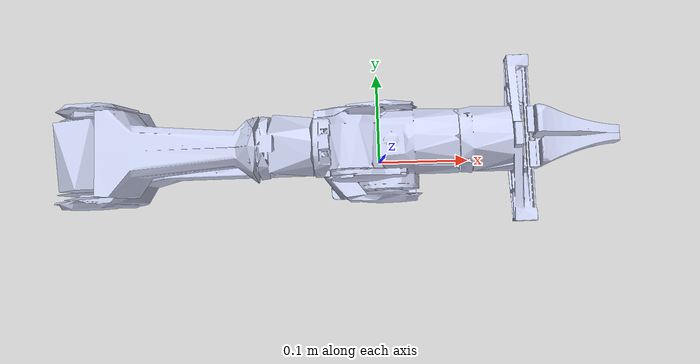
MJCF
<mujoco model="piper">
  <compiler angle="radian" meshdir="meshes/"/>

  <asset>
    <mesh name="base_link" content_type="model/stl" file="base_link.STL"/>
    <mesh name="link1" content_type="model/stl" file="link1.STL"/>
    <mesh name="link2" content_type="model/stl" file="link2.STL"/>
    <mesh name="link3" content_type="model/stl" file="link3.STL"/>
    <mesh name="link4" content_type="model/stl" file="link4.STL"/>
    <mesh name="link5" content_type="model/stl" file="link5.STL"/>
    <mesh name="link6" content_type="model/stl" file="link6.STL"/>
    <mesh name="gripper_base" content_type="model/stl" file="gripper_base.STL"/>
    <mesh name="link7" content_type="model/stl" file="link7.STL"/>
    <mesh name="link8" content_type="model/stl" file="link8.STL"/>
  </asset>

  <worldbody>
    <geom type="mesh" contype="0" conaffinity="0" group="1" density="0" rgba="0.792157 0.819608 0.933333 1" mesh="base_link"/>
    <geom type="mesh" rgba="0.792157 0.819608 0.933333 1" mesh="base_link"/>
    <body name="link1" pos="0 0 0.123">
      <inertial pos="0.000121505 0.000104632 -0.00438597" quat="0.682111 0.730899 0.0143111 -0.0175062" mass="0.71" diaginertia="0.000489262 0.000439887 0.000404551"/>
      <joint name="joint1" pos="0 0 0" axis="0 0 1" range="-2.618 2.168" actuatorfrcrange="-100 100"/>
      <geom type="mesh" contype="0" conaffinity="0" group="1" density="0" rgba="0.792157 0.819608 0.933333 1" mesh="link1"/>
      <geom type="mesh" rgba="0.792157 0.819608 0.933333 1" mesh="link1"/>
      <body name="link2" quat="0.0480084 -0.0480134 -0.705476 -0.705474">
        <inertial pos="0.198666 -0.0109269 0.00142122" quat="0.510131 0.475585 0.525075 0.48773" mass="1.17" diaginertia="0.0679032 0.067745 0.00111966"/>
        <joint name="joint2" pos="0 0 0" axis="0 0 1" range="0 3.14" actuatorfrcrange="-100 100"/>
        <geom type="mesh" contype="0" conaffinity="0" group="1" density="0" rgba="0.792157 0.819608 0.933333 1" mesh="link2"/>
        <geom type="mesh" rgba="0.792157 0.819608 0.933333 1" mesh="link2"/>
        <body name="link3" pos="0.28503 0 0" quat="0.623996 0 0 -0.781427">
          <inertial pos="-0.0202738 -0.133915 -0.000458683" quat="0.706282 0.705111 0.0532202 0.0339395" mass="0.5" diaginertia="0.0138227 0.0138032 0.000244685"/>
          <joint name="joint3" pos="0 0 0" axis="0 0 1" range="-2.967 0" actuatorfrcrange="-100 100"/>
          <geom type="mesh" contype="0" conaffinity="0" group="1" density="0" rgba="0.792157 0.819608 0.933333 1" mesh="link3"/>
          <geom type="mesh" rgba="0.792157 0.819608 0.933333 1" mesh="link3"/>
          <body name="link4" pos="-0.021984 -0.25075 0" quat="0.707105 0.707108 0 0">
            <inertial pos="-9.66636e-05 0.000876064 -0.00496881" quat="0.714689 -0.0948484 0.0635223 0.690064" mass="0.38" diaginertia="0.000191586 0.000185052 0.000152863"/>
            <joint name="joint4" pos="0 0 0" axis="0 0 1" range="-1.745 1.745" actuatorfrcrange="-100 100"/>
            <geom type="mesh" contype="0" conaffinity="0" group="1" density="0" rgba="0.792157 0.819608 0.933333 1" mesh="link4"/>
            <geom type="mesh" rgba="0.792157 0.819608 0.933333 1" mesh="link4"/>
            <body name="link5" quat="0.707105 -0.707108 0 0">
              <inertial pos="-4.10554e-05 -0.0566487 -0.00372058" quat="0.709589 0.704614 0.00134613 -0.00132656" mass="0.383" diaginertia="0.00166169 0.00164328 0.000185028"/>
              <joint name="joint5" pos="0 0 0" axis="0 0 1" range="-1.22 1.22" actuatorfrcrange="-100 100"/>
              <geom type="mesh" contype="0" conaffinity="0" group="1" density="0" rgba="0.792157 0.819608 0.933333 1" mesh="link5"/>
              <geom type="mesh" rgba="0.792157 0.819608 0.933333 1" mesh="link5"/>
              <body name="link6" pos="8.8259e-05 -0.091 0" quat="0.707105 0.707108 0 0">
                <inertial pos="-0.000182344 7.9409e-05 0.0316207" quat="0.999977 6.30204e-05 0.00678001 0.000789387" mass="0.457" diaginertia="0.000938049 0.000723078 0.000395388"/>
                <joint name="joint6" pos="0 0 0" axis="0 0 1" range="-2.0944 2.0944" actuatorfrcrange="-100 100"/>
                <geom type="mesh" contype="0" conaffinity="0" group="1" density="0" rgba="0.898039 0.917647 0.929412 1" mesh="link6"/>
                <geom type="mesh" rgba="0.898039 0.917647 0.929412 1" mesh="link6"/>
                <geom type="mesh" contype="0" conaffinity="0" group="1" density="0" rgba="0.792157 0.819608 0.933333 1" mesh="gripper_base"/>
                <geom type="mesh" rgba="0.792157 0.819608 0.933333 1" mesh="gripper_base"/>
                <body name="link7" pos="0 0 0.1358" quat="0.707105 0.707108 0 0">
                  <inertial pos="0.000651232 -0.049193 0.00972259" quat="0.477798 0.572974 -0.518028 0.418398" mass="0.025" diaginertia="7.74531e-05 7.36783e-05 5.0886e-06"/>
                  <joint name="joint7" pos="0 0 0" axis="0 0 1" type="slide" range="0 0.035" actuatorfrcrange="-10 10"/>
                  <geom type="mesh" contype="0" conaffinity="0" group="1" density="0" rgba="0.792157 0.819608 0.933333 1" mesh="link7"/>
                  <geom type="mesh" rgba="0.792157 0.819608 0.933333 1" mesh="link7"/>
                </body>
                <body name="link8" pos="0 0 0.1358" quat="-2.59734e-06 -2.59735e-06 -0.707108 -0.707105">
                  <inertial pos="0.000651232 -0.049193 0.00972259" quat="0.477798 0.572974 -0.518028 0.418398" mass="0.025" diaginertia="7.74531e-05 7.36783e-05 5.0886e-06"/>
                  <joint name="joint8" pos="0 0 0" axis="0 0 -1" type="slide" range="-0.035 0" actuatorfrcrange="-10 10"/>
                  <geom type="mesh" contype="0" conaffinity="0" group="1" density="0" rgba="0.792157 0.819608 0.933333 1" mesh="link8"/>
                  <geom type="mesh" rgba="0.792157 0.819608 0.933333 1" mesh="link8"/>
                </body>
              </body>
            </body>
          </body>
        </body>
      </body>
    </body>
  </worldbody>
</mujoco>
